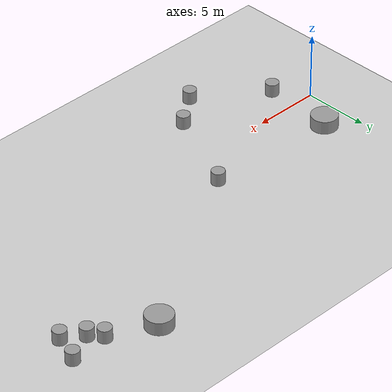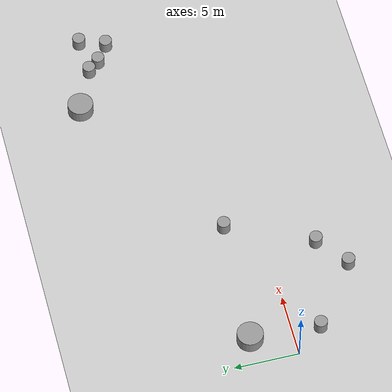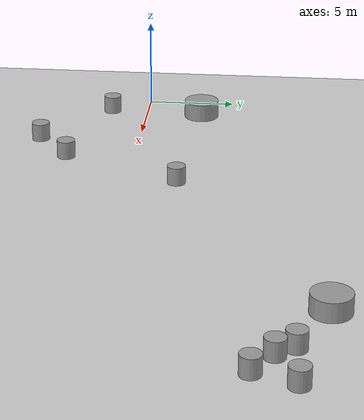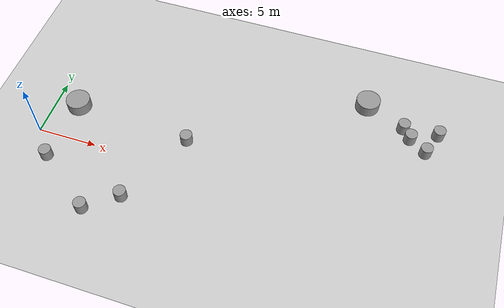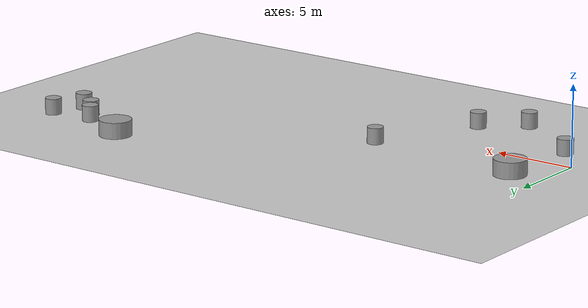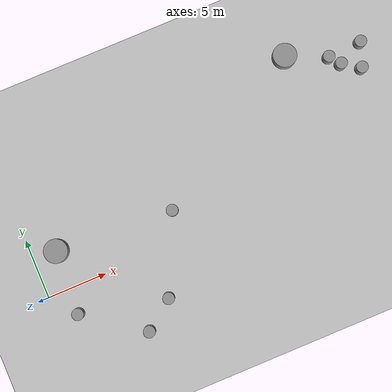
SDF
<sdf version="1.7">
 <world name="default">
  <model name="ground_plane">
   <static>1</static>
   <link name="link">
    <collision name="collision">
     <geometry><plane><normal>0 0 1</normal><size>100 100</size></plane></geometry>
     <surface><friction><ode><mu>100</mu><mu2>50</mu2></ode></friction></surface>
    </collision>
    <visual name="visual">
     <cast_shadows>0</cast_shadows>
     <geometry><plane><normal>0 0 1</normal><size>100 100</size></plane></geometry>
     <material>
      <script><uri>file://media/materials/scripts/gazebo.material</uri><name>Gazebo/Grey</name></script>
     </material>
    </visual>
   </link>
  </model>
  <model name="unit_cylinder_1">
   <pose>1.77775 -2.12656 0.499996 3e-06 1e-06 -0</pose>
   <link name="link">
    <inertial>
     <mass>1</mass>
     <inertia><ixx>0.145833</ixx><ixy>0</ixy><ixz>0</ixz><iyy>0.145833</iyy><iyz>0</iyz><izz>0.125</izz></inertia>
    </inertial>
    <collision name="collision">
     <geometry><cylinder><radius>0.5</radius><length>1</length></cylinder></geometry>
    </collision>
    <visual name="visual">
     <geometry><cylinder><radius>0.5</radius><length>1</length></cylinder></geometry>
     <material>
      <script><name>Gazebo/Grey</name><uri>file://media/materials/scripts/gazebo.material</uri></script>
     </material>
    </visual>
   </link>
  </model>
  <model name="unit_cylinder_1_clone">
   <pose>31.5255 9.51859 0.499994 -2e-06 -0 -0</pose>
   <link name="link">
    <inertial>
     <mass>1</mass>
     <inertia><ixx>0.145833</ixx><ixy>0</ixy><ixz>0</ixz><iyy>0.145833</iyy><iyz>0</iyz><izz>0.125</izz></inertia>
    </inertial>
    <collision name="collision">
     <geometry><cylinder><radius>0.5</radius><length>1</length></cylinder></geometry>
    </collision>
    <visual name="visual">
     <geometry><cylinder><radius>0.5</radius><length>1</length></cylinder></geometry>
     <material>
      <script><name>Gazebo/Grey</name><uri>file://media/materials/scripts/gazebo.material</uri></script>
     </material>
    </visual>
   </link>
  </model>
  <model name="unit_cylinder_1_clone_2">
   <pose>9.02271 -3.75744 0.499994 3e-06 1e-06 3.07026</pose>
   <link name="link">
    <inertial>
     <mass>1</mass>
     <inertia><ixx>0.145833</ixx><ixy>0</ixy><ixz>0</ixz><iyy>0.145833</iyy><iyz>0</iyz><izz>0.125</izz></inertia>
    </inertial>
    <collision name="collision">
     <geometry><cylinder><radius>0.5</radius><length>1</length></cylinder></geometry>
    </collision>
    <visual name="visual">
     <geometry><cylinder><radius>0.5</radius><length>1</length></cylinder></geometry>
     <material>
      <script><name>Gazebo/Grey</name><uri>file://media/materials/scripts/gazebo.material</uri></script>
     </material>
    </visual>
   </link>
  </model>
  <model name="unit_cylinder_1m">
   <link name="link">
    <inertial>
     <mass>1</mass>
     <inertia><ixx>0.145833</ixx><ixy>0</ixy><ixz>0</ixz><iyy>0.145833</iyy><iyz>0</iyz><izz>0.125</izz></inertia>
    </inertial>
    <visual name="visual">
     <geometry><cylinder><radius>1</radius><length>1</length></cylinder></geometry>
     <material>
      <script><name>Gazebo/Grey</name><uri>file://media/materials/scripts/gazebo.material</uri></script>
      <shader type="pixel"><normal_map>__default__</normal_map></shader>
      <ambient>0.3 0.3 0.3 1</ambient>
      <diffuse>0.7 0.7 0.7 1</diffuse>
      <specular>0.01 0.01 0.01 1</specular>
      <emissive>0 0 0 1</emissive>
     </material>
    </visual>
    <collision name="collision">
     <geometry><cylinder><radius>1</radius><length>1</length></cylinder></geometry>
     <surface>
      <friction>
       <ode><mu>1</mu><mu2>1</mu2><fdir1>0 0 0</fdir1><slip1>0</slip1><slip2>0</slip2></ode>
       <torsional>
        <coefficient>1</coefficient>
        <patch_radius>0</patch_radius>
        <surface_radius>0</surface_radius>
        <use_patch_radius>1</use_patch_radius>
        <ode><slip>0</slip></ode>
       </torsional>
      </friction>
      <bounce><restitution_coefficient>0</restitution_coefficient><threshold>1e+06</threshold></bounce>
      <contact>
       <collide_without_contact>0</collide_without_contact>
       <collide_without_contact_bitmask>1</collide_without_contact_bitmask>
       <collide_bitmask>1</collide_bitmask>
       <ode>
        <soft_cfm>0</soft_cfm>
        <soft_erp>0.2</soft_erp>
        <kp>1e+13</kp>
        <kd>1</kd>
        <max_vel>0.01</max_vel>
        <min_depth>0</min_depth>
       </ode>
       <bullet>
        <split_impulse>1</split_impulse>
        <split_impulse_penetration_threshold>-0.01</split_impulse_penetration_threshold>
        <soft_cfm>0</soft_cfm>
        <soft_erp>0.2</soft_erp>
        <kp>1e+13</kp>
        <kd>1</kd>
       </bullet>
      </contact>
     </surface>
    </collision>
   </link>
   <static>0</static>
   <pose>2.07044 3.26299 0.499994 -6e-06 6e-06 0.000113</pose>
  </model>
  <model name="unit_cylinder_1m_clone">
   <link name="link">
    <inertial>
     <mass>1</mass>
     <inertia><ixx>0.145833</ixx><ixy>0</ixy><ixz>0</ixz><iyy>0.145833</iyy><iyz>0</iyz><izz>0.125</izz></inertia>
    </inertial>
    <visual name="visual">
     <geometry><cylinder><radius>1</radius><length>1</length></cylinder></geometry>
     <material>
      <script><name>Gazebo/Grey</name><uri>file://media/materials/scripts/gazebo.material</uri></script>
      <shader type="pixel"><normal_map>__default__</normal_map></shader>
      <ambient>0.3 0.3 0.3 1</ambient>
      <diffuse>0.7 0.7 0.7 1</diffuse>
      <specular>0.01 0.01 0.01 1</specular>
      <emissive>0 0 0 1</emissive>
     </material>
    </visual>
    <collision name="collision">
     <geometry><cylinder><radius>1</radius><length>1</length></cylinder></geometry>
     <surface>
      <friction>
       <ode><mu>1</mu><mu2>1</mu2><fdir1>0 0 0</fdir1><slip1>0</slip1><slip2>0</slip2></ode>
       <torsional>
        <coefficient>1</coefficient>
        <patch_radius>0</patch_radius>
        <surface_radius>0</surface_radius>
        <use_patch_radius>1</use_patch_radius>
        <ode><slip>0</slip></ode>
       </torsional>
      </friction>
      <bounce><restitution_coefficient>0</restitution_coefficient><threshold>1e+06</threshold></bounce>
      <contact>
       <collide_without_contact>0</collide_without_contact>
       <collide_without_contact_bitmask>1</collide_without_contact_bitmask>
       <collide_bitmask>1</collide_bitmask>
       <ode>
        <soft_cfm>0</soft_cfm>
        <soft_erp>0.2</soft_erp>
        <kp>1e+13</kp>
        <kd>1</kd>
        <max_vel>0.01</max_vel>
        <min_depth>0</min_depth>
       </ode>
       <bullet>
        <split_impulse>1</split_impulse>
        <split_impulse_penetration_threshold>-0.01</split_impulse_penetration_threshold>
        <soft_cfm>0</soft_cfm>
        <soft_erp>0.2</soft_erp>
        <kp>1e+13</kp>
        <kd>1</kd>
       </bullet>
      </contact>
     </surface>
    </collision>
   </link>
   <static>0</static>
   <pose>25.3482 10.8221 0.499994 7e-06 -6e-06 -0.015792</pose>
  </model>
  <model name="unit_cylinder">
   <pose>30.8032 7.50832 0.499997 0 -0 0</pose>
   <link name="link">
    <inertial>
     <mass>1</mass>
     <inertia><ixx>0.145833</ixx><ixy>0</ixy><ixz>0</ixz><iyy>0.145833</iyy><iyz>0</iyz><izz>0.125</izz></inertia>
    </inertial>
    <collision name="collision">
     <geometry><cylinder><radius>0.5</radius><length>1</length></cylinder></geometry>
    </collision>
    <visual name="visual">
     <geometry><cylinder><radius>0.5</radius><length>1</length></cylinder></geometry>
     <material>
      <script><name>Gazebo/Grey</name><uri>file://media/materials/scripts/gazebo.material</uri></script>
     </material>
    </visual>
   </link>
  </model>
  <model name="unit_cylinder_2">
   <pose>6.5711 -5.63443 0.5 0 -0 0.001305</pose>
   <link name="link">
    <inertial>
     <mass>1</mass>
     <inertia><ixx>0.145833</ixx><ixy>0</ixy><ixz>0</ixz><iyy>0.145833</iyy><iyz>0</iyz><izz>0.125</izz></inertia>
    </inertial>
    <collision name="collision">
     <geometry><cylinder><radius>0.5</radius><length>1</length></cylinder></geometry>
    </collision>
    <visual name="visual">
     <geometry><cylinder><radius>0.5</radius><length>1</length></cylinder></geometry>
     <material>
      <script><name>Gazebo/Grey</name><uri>file://media/materials/scripts/gazebo.material</uri></script>
     </material>
    </visual>
   </link>
  </model>
  <model name="unit_cylinder_7">
   <pose>12.0166 2.69602 0.499996 -3e-06 3e-06 0.012227</pose>
   <link name="link">
    <inertial>
     <mass>1</mass>
     <inertia><ixx>0.145833</ixx><ixy>0</ixy><ixz>0</ixz><iyy>0.145833</iyy><iyz>0</iyz><izz>0.125</izz></inertia>
    </inertial>
    <collision name="collision">
     <geometry><cylinder><radius>0.5</radius><length>1</length></cylinder></geometry>
    </collision>
    <visual name="visual">
     <geometry><cylinder><radius>0.5</radius><length>1</length></cylinder></geometry>
     <material>
      <script><name>Gazebo/Grey</name><uri>file://media/materials/scripts/gazebo.material</uri></script>
     </material>
    </visual>
   </link>
  </model>
  <model name="unit_cylinder_8">
   <pose>29.3723 8.46682 0.499991 0 -0 0</pose>
   <link name="link">
    <inertial>
     <mass>1</mass>
     <inertia><ixx>0.145833</ixx><ixy>0</ixy><ixz>0</ixz><iyy>0.145833</iyy><iyz>0</iyz><izz>0.125</izz></inertia>
    </inertial>
    <collision name="collision">
     <geometry><cylinder><radius>0.5</radius><length>1</length></cylinder></geometry>
    </collision>
    <visual name="visual">
     <geometry><cylinder><radius>0.5</radius><length>1</length></cylinder></geometry>
     <material>
      <script><name>Gazebo/Grey</name><uri>file://media/materials/scripts/gazebo.material</uri></script>
     </material>
    </visual>
   </link>
  </model>
  <model name="unit_cylinder_14">
   <pose>28.6561 9.35598 0.499997 1e-06 -0 0</pose>
   <link name="link">
    <inertial>
     <mass>1</mass>
     <inertia><ixx>0.145833</ixx><ixy>0</ixy><ixz>0</ixz><iyy>0.145833</iyy><iyz>0</iyz><izz>0.125</izz></inertia>
    </inertial>
    <collision name="collision">
     <geometry><cylinder><radius>0.5</radius><length>1</length></cylinder></geometry>
    </collision>
    <visual name="visual">
     <geometry><cylinder><radius>0.5</radius><length>1</length></cylinder></geometry>
     <material>
      <script><name>Gazebo/Grey</name><uri>file://media/materials/scripts/gazebo.material</uri></script>
     </material>
    </visual>
   </link>
  </model>
 </world>
</sdf>
